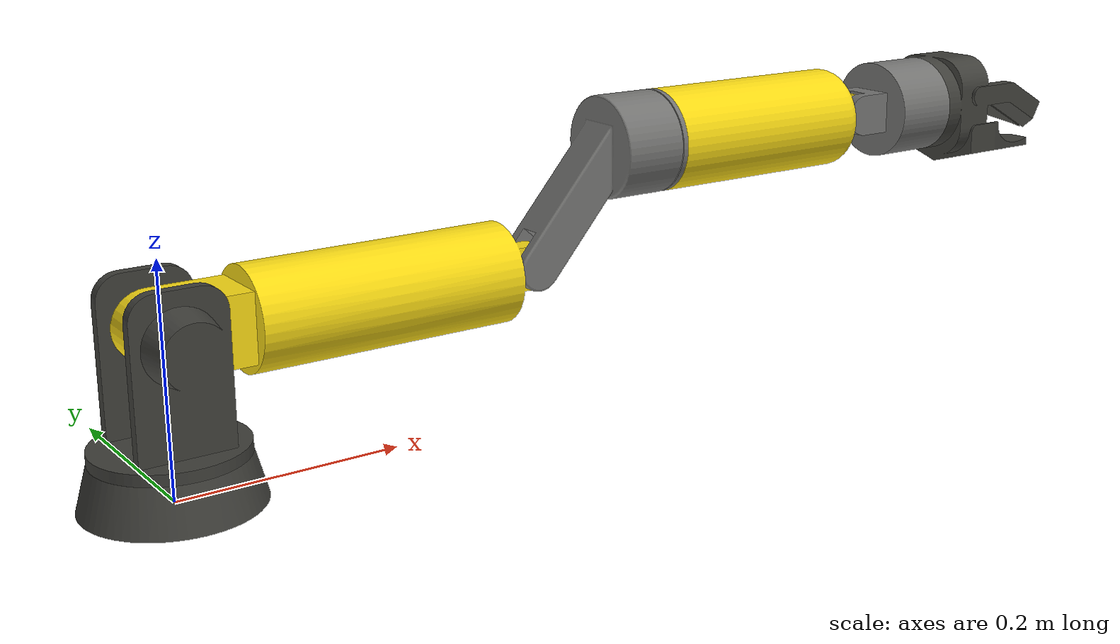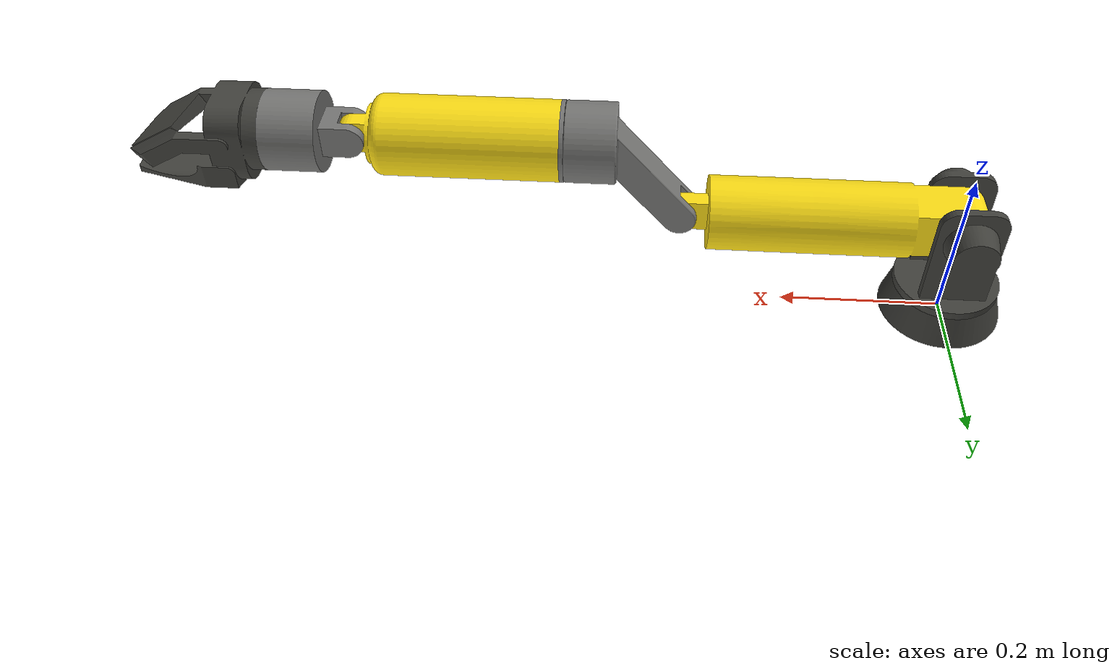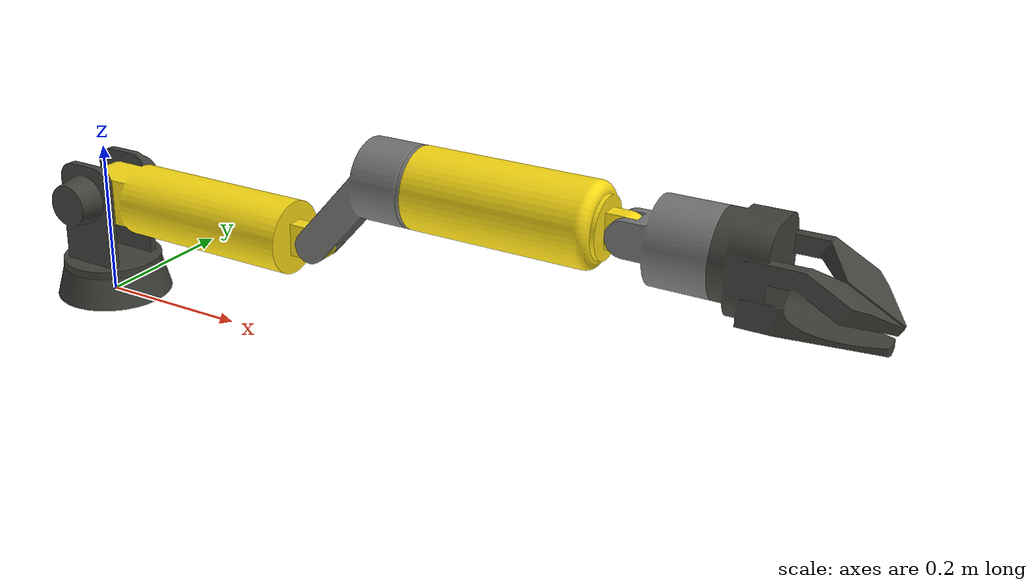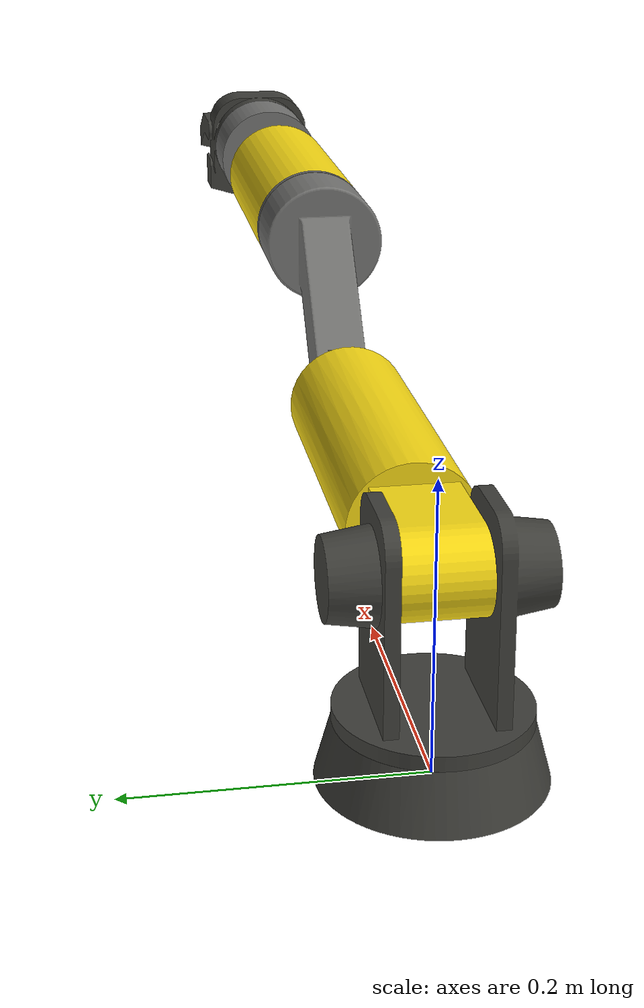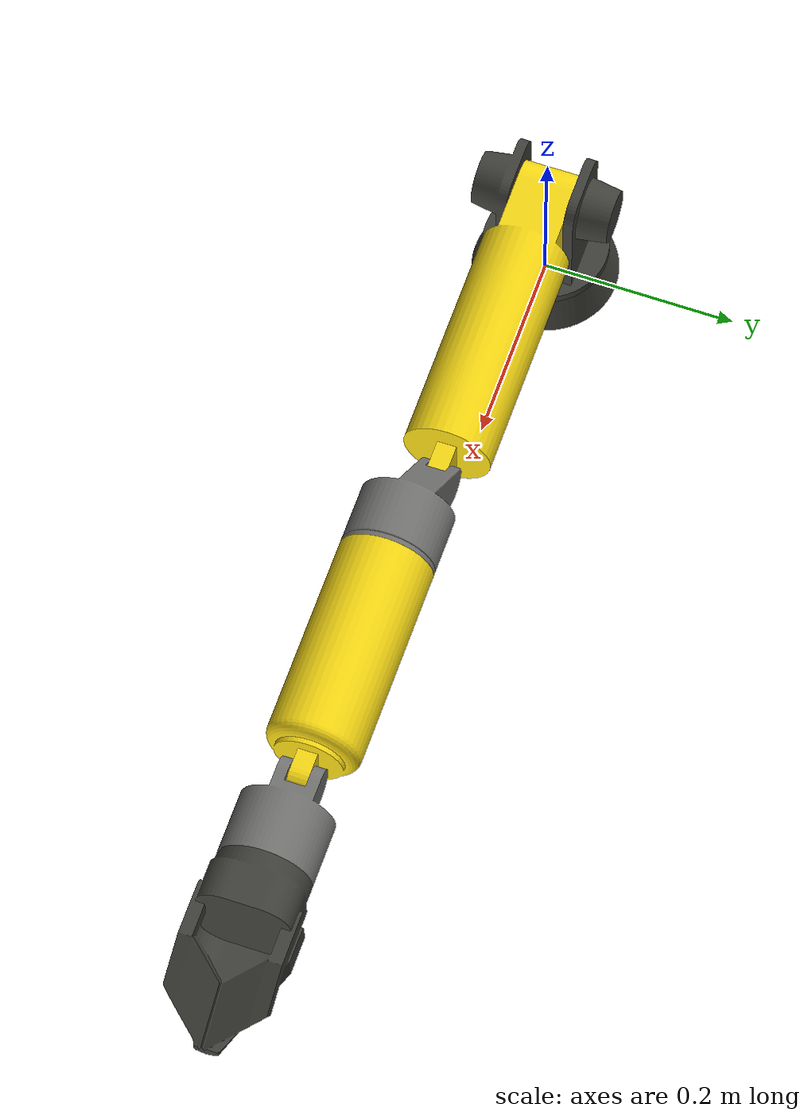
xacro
<?xml version="1.0" ?>
<robot name="Spot_Arm_Export" xmlns:xacro="http://www.ros.org/wiki/xacro">

<xacro:include filename="$(find Spot_Arm_Export_description)/urdf/materials.xacro" />
<xacro:include filename="$(find Spot_Arm_Export_description)/urdf/Spot_Arm_Export.trans" />
<xacro:include filename="$(find Spot_Arm_Export_description)/urdf/Spot_Arm_Export.gazebo" />
<link name="base_link">
  <inertial>
    <origin xyz="1.4893738513430887e-17 1.4893738513430887e-17 0.018976000606365378" rpy="0 0 0"/>
    <mass value="1.6720303943376955"/>
    <inertia ixx="0.002269" iyy="0.002269" izz="0.004095" ixy="0.0" iyz="-0.0" ixz="-0.0"/>
  </inertial>
  <visual>
    <origin xyz="0 0 0" rpy="0 0 0"/>
    <geometry>
      <mesh filename="package://Spot_Arm_Export_description/meshes/base_link.stl" scale="0.001 0.001 0.001"/>
    </geometry>
    <material name="black"/>
  </visual>
  <collision>
    <origin xyz="0 0 0" rpy="0 0 0"/>
    <geometry>
      <mesh filename="package://Spot_Arm_Export_description/meshes/base_link.stl" scale="0.001 0.001 0.001"/>
    </geometry>
  </collision>
</link>

<link name="link1_1">
  <inertial>
    <origin xyz="-0.00010166140320390767 -0.002439812837878551 0.06408235101807577" rpy="0 0 0"/>
    <mass value="1.323325671789871"/>
    <inertia ixx="0.005142" iyy="0.003539" izz="0.003127" ixy="-0.0" iyz="0.000116" ixz="5e-06"/>
  </inertial>
  <visual>
    <origin xyz="-0.0 -0.0 -0.04" rpy="0 0 0"/>
    <geometry>
      <mesh filename="package://Spot_Arm_Export_description/meshes/link1_1.stl" scale="0.001 0.001 0.001"/>
    </geometry>
    <material name="black"/>
  </visual>
  <collision>
    <origin xyz="-0.0 -0.0 -0.04" rpy="0 0 0"/>
    <geometry>
      <mesh filename="package://Spot_Arm_Export_description/meshes/link1_1.stl" scale="0.001 0.001 0.001"/>
    </geometry>
  </collision>
</link>

<link name="link2__1">
  <inertial>
    <origin xyz="0.16558407457674612 -0.03000000000000001 2.9449114878343785e-06" rpy="0 0 0"/>
    <mass value="4.994414599306621"/>
    <inertia ixx="0.004693" iyy="0.041317" izz="0.041288" ixy="-0.0" iyz="-0.0" ixz="-2e-06"/>
  </inertial>
  <visual>
    <origin xyz="-0.0 -0.03 -0.14" rpy="0 0 0"/>
    <geometry>
      <mesh filename="package://Spot_Arm_Export_description/meshes/link2__1.stl" scale="0.001 0.001 0.001"/>
    </geometry>
    <material name="yellow"/>
  </visual>
  <collision>
    <origin xyz="-0.0 -0.03 -0.14" rpy="0 0 0"/>
    <geometry>
      <mesh filename="package://Spot_Arm_Export_description/meshes/link2__1.stl" scale="0.001 0.001 0.001"/>
    </geometry>
  </collision>
</link>

<link name="link3_1">
  <inertial>
    <origin xyz="0.07808838335862711 -0.010000000424296312 0.07857423931894233" rpy="0 0 0"/>
    <mass value="1.3431854176170634"/>
    <inertia ixx="0.002456" iyy="0.003583" izz="0.002394" ixy="-0.0" iyz="-0.0" ixz="-0.001302"/>
  </inertial>
  <visual>
    <origin xyz="-0.3385 -0.01 -0.140137" rpy="0 0 0"/>
    <geometry>
      <mesh filename="package://Spot_Arm_Export_description/meshes/link3_1.stl" scale="0.001 0.001 0.001"/>
    </geometry>
    <material name="silver"/>
  </visual>
  <collision>
    <origin xyz="-0.3385 -0.01 -0.140137" rpy="0 0 0"/>
    <geometry>
      <mesh filename="package://Spot_Arm_Export_description/meshes/link3_1.stl" scale="0.001 0.001 0.001"/>
    </geometry>
  </collision>
</link>

<link name="link4_1">
  <inertial>
    <origin xyz="0.09116530618238194 -4.470348317907382e-10 1.6517662931869737e-08" rpy="0 0 0"/>
    <mass value="1.9937738359972355"/>
    <inertia ixx="0.001271" iyy="0.006352" izz="0.006352" ixy="-0.0" iyz="0.0" ixz="-0.0"/>
  </inertial>
  <visual>
    <origin xyz="-0.4455 0.0 -0.237477" rpy="0 0 0"/>
    <geometry>
      <mesh filename="package://Spot_Arm_Export_description/meshes/link4_1.stl" scale="0.001 0.001 0.001"/>
    </geometry>
    <material name="silver"/>
  </visual>
  <collision>
    <origin xyz="-0.4455 0.0 -0.237477" rpy="0 0 0"/>
    <geometry>
      <mesh filename="package://Spot_Arm_Export_description/meshes/link4_1.stl" scale="0.001 0.001 0.001"/>
    </geometry>
  </collision>
</link>

<link name="link5_1">
  <inertial>
    <origin xyz="0.11485690332465609 -4.470348257432113e-10 1.6517662876358585e-08" rpy="0 0 0"/>
    <mass value="2.025824700134457"/>
    <inertia ixx="0.003336" iyy="0.010798" izz="0.010792" ixy="-0.0" iyz="0.0" ixz="-0.0"/>
  </inertial>
  <visual>
    <origin xyz="-0.4805 0.0 -0.237477" rpy="0 0 0"/>
    <geometry>
      <mesh filename="package://Spot_Arm_Export_description/meshes/link5_1.stl" scale="0.001 0.001 0.001"/>
    </geometry>
    <material name="yellow"/>
  </visual>
  <collision>
    <origin xyz="-0.4805 0.0 -0.237477" rpy="0 0 0"/>
    <geometry>
      <mesh filename="package://Spot_Arm_Export_description/meshes/link5_1.stl" scale="0.001 0.001 0.001"/>
    </geometry>
  </collision>
</link>

<link name="link6_1">
  <inertial>
    <origin xyz="0.05389380319242287 -0.010500000447034839 1.6516571749169984e-08" rpy="0 0 0"/>
    <mass value="1.0011757192825106"/>
    <inertia ixx="0.001219" iyy="0.001201" izz="0.001214" ixy="0.0" iyz="-0.0" ixz="-0.0"/>
  </inertial>
  <visual>
    <origin xyz="-0.7218 -0.01 -0.237477" rpy="0 0 0"/>
    <geometry>
      <mesh filename="package://Spot_Arm_Export_description/meshes/link6_1.stl" scale="0.001 0.001 0.001"/>
    </geometry>
    <material name="silver"/>
  </visual>
  <collision>
    <origin xyz="-0.7218 -0.01 -0.237477" rpy="0 0 0"/>
    <geometry>
      <mesh filename="package://Spot_Arm_Export_description/meshes/link6_1.stl" scale="0.001 0.001 0.001"/>
    </geometry>
  </collision>
</link>

<link name="link7_1">
  <inertial>
    <origin xyz="0.056163464375598826 9.814067565384844e-06 -0.010275722003246418" rpy="0 0 0"/>
    <mass value="1.6734994307062705"/>
    <inertia ixx="0.002751" iyy="0.004068" izz="0.003961" ixy="-1e-06" iyz="0.0" ixz="0.000546"/>
  </inertial>
  <visual>
    <origin xyz="-0.8218 0.0005 -0.237477" rpy="0 0 0"/>
    <geometry>
      <mesh filename="package://Spot_Arm_Export_description/meshes/link7_1.stl" scale="0.001 0.001 0.001"/>
    </geometry>
    <material name="black"/>
  </visual>
  <collision>
    <origin xyz="-0.8218 0.0005 -0.237477" rpy="0 0 0"/>
    <geometry>
      <mesh filename="package://Spot_Arm_Export_description/meshes/link7_1.stl" scale="0.001 0.001 0.001"/>
    </geometry>
  </collision>
</link>

<joint name="Rev7" type="revolute">
  <origin xyz="0.0 0.0 0.04" rpy="0 0 0"/>
  <parent link="base_link"/>
  <child link="link1_1"/>
  <axis xyz="0.0 0.0 1.0"/>
  <limit effort="500.0" lower="-2.61799" upper="3.14159" velocity="0.5"/>
</joint>

<joint name="Rev8" type="revolute">
  <origin xyz="0.0 0.03 0.1" rpy="0 0 0"/>
  <parent link="link1_1"/>
  <child link="link2__1"/>
  <axis xyz="0.0 -1.0 0.0"/>
  <limit effort="500.0" lower="-0.523599" upper="3.14159" velocity="0.5"/>
</joint>

<joint name="Rev9" type="revolute">
  <origin xyz="0.3385 -0.02 0.000137" rpy="0 0 0"/>
  <parent link="link2__1"/>
  <child link="link3_1"/>
  <axis xyz="0.0 1.0 0.0"/>
  <limit effort="500.0" lower="0" upper="2.61799" velocity="0.5"/>
</joint>

<joint name="Rev10" type="revolute">
  <origin xyz="0.107 -0.01 0.09734" rpy="0 0 0"/>
  <parent link="link3_1"/>
  <child link="link4_1"/>
  <limit effort="500.0" lower="-4.3633" upper="1.22173" velocity="0.5"/>
</joint>

<joint name="Slider11" type="prismatic">
  <origin xyz="0.035 0.0 0.0" rpy="0 0 0"/>
  <parent link="link4_1"/>
  <child link="link5_1"/>
  <axis xyz="1.0 -0.0 0.0"/>
  <limit upper="0.075" lower="0.0" effort="100" velocity="100"/>
</joint>

<joint name="Rev14" type="revolute">
  <origin xyz="0.2413 0.01 0.0" rpy="0 0 0"/>
  <parent link="link5_1"/>
  <child link="link6_1"/>
  <axis xyz="-0.0 1.0 0.0"/>
  <limit effort="500.0" lower="-1.047198" upper="1.047198" velocity="0.5"/>
</joint>

<joint name="Rev15" type="revolute">
  <origin xyz="0.1 -0.0105 0.0" rpy="0 0 0"/>
  <parent link="link6_1"/>
  <child link="link7_1"/>
  <axis xyz="-1.0 -0.0 -0.0"/>
  <limit effort="500.0" lower="-4.45059" upper="1.30899" velocity="0.5"/>
</joint>

</robot>

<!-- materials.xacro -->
<robot name="Spot_Arm_Export" xmlns:xacro="http://www.ros.org/wiki/xacro" >

<material name="yellow">
  <color rgba="0.992 0.8705 0.08235 1.000"/>
</material>

<material name="black">
  <color rgba="0.254 0.254 0.235 1.000"/>
</material>

<material name="silver">
  <color rgba="0.4627 0.4627 0.4549 1.000"/>
</material>

</robot>

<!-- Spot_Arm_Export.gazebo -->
<robot name="Spot_Arm_Export" xmlns:xacro="http://www.ros.org/wiki/xacro" >

<xacro:property name="body_color" value="Gazebo/Silver" />

<gazebo>
  <plugin name="control" filename="libgazebo_ros_control.so"/>
</gazebo>
<gazebo reference="base_link">
  <material>${body_color}</material>
  <mu1>0.2</mu1>
  <mu2>0.2</mu2>
  <selfCollide>true</selfCollide>
  <gravity>true</gravity>
</gazebo>

<gazebo reference="link1_1">
  <material>${body_color}</material>
  <mu1>0.2</mu1>
  <mu2>0.2</mu2>
  <selfCollide>true</selfCollide>
</gazebo>

<gazebo reference="link2__1">
  <material>${body_color}</material>
  <mu1>0.2</mu1>
  <mu2>0.2</mu2>
  <selfCollide>true</selfCollide>
</gazebo>

<gazebo reference="link3_1">
  <material>${body_color}</material>
  <mu1>0.2</mu1>
  <mu2>0.2</mu2>
  <selfCollide>true</selfCollide>
</gazebo>

<gazebo reference="link4_1">
  <material>${body_color}</material>
  <mu1>0.2</mu1>
  <mu2>0.2</mu2>
  <selfCollide>true</selfCollide>
</gazebo>

<gazebo reference="link5_1">
  <material>${body_color}</material>
  <mu1>0.2</mu1>
  <mu2>0.2</mu2>
  <selfCollide>true</selfCollide>
</gazebo>

<gazebo reference="link6_1">
  <material>${body_color}</material>
  <mu1>0.2</mu1>
  <mu2>0.2</mu2>
  <selfCollide>true</selfCollide>
</gazebo>

<gazebo reference="link7_1">
  <material>${body_color}</material>
  <mu1>0.2</mu1>
  <mu2>0.2</mu2>
  <selfCollide>true</selfCollide>
</gazebo>

</robot>
